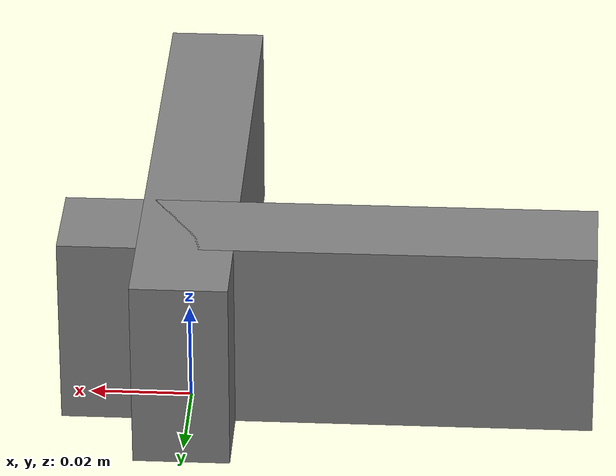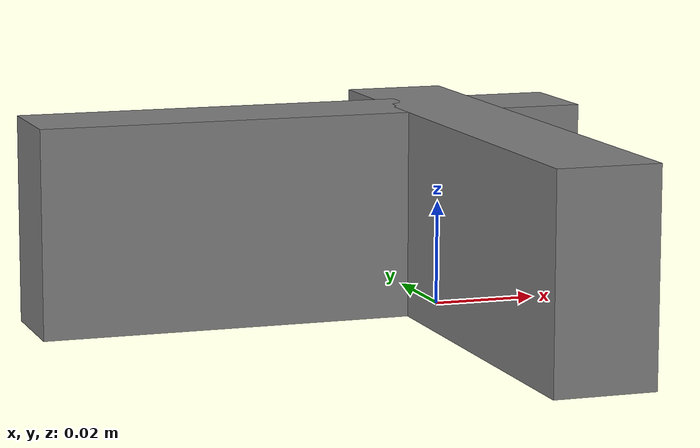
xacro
<?xml version="1.0"?>
<robot name="realsense" xmlns:xacro="http://ros.org/wiki/xacro">

<xacro:include filename="$(find sensors_description)/urdfs/sensors/realsense.urdf.xacro"/>

<link name="parent" />

<xacro:sensor_r430 parent="parent" prefix="front">
 <origin xyz="0 0 0" rpy="0 0 0"/>
</xacro:sensor_r430>

<xacro:sensor_r430 parent="parent" prefix="back">
 <origin xyz="0 0 0" rpy="0 0 -1.5708"/>
</xacro:sensor_r430>

</robot>

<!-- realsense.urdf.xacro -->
<robot xmlns:xacro="http://ros.org/wiki/xacro">

<xacro:include filename="$(find sensors_description)/urdfs/sensors/realsense.gazebo.urdf.xacro"/>

<xacro:property name="M_PI" value="3.1415926535897931" />

<!-- The following values are approximate, and the camera node publishing TF values with actual calibrated camera extrinsic values -->
<xacro:property name="r430_cam_depth_to_left_ir_offset" value="-0.025"/>
<xacro:property name="r430_cam_depth_to_right_ir_offset" value="0.025"/>
<xacro:property name="r430_cam_depth_to_fisheye_offset" value="0.042"/>

<!-- The following values model the aluminum peripherial case for the R430 camera, with the camera joint represented by the actual peripherial camera tripod mount -->
<xacro:property name="r430_cam_width" value="0.105"/>
<xacro:property name="r430_cam_height" value="0.039"/>
<xacro:property name="r430_cam_depth" value="0.019"/>
<xacro:property name="r430_cam_mount_from_center_offset" value=".0275"/>

<!-- The following offset is relative the the physical R430 camera peripherial camera tripod mount -->
<xacro:property name="r430_cam_depth_px" value="0.00"/>
<xacro:property name="r430_cam_depth_py" value="-0.035"/>
<xacro:property name="r430_cam_depth_pz" value="0.028"/>

<material name="aluminum">
	<color rgba="0.5 0.5 0.5 1"/>
</material>

<xacro:macro name="sensor_r430" params="parent *origin prefix">

	<!-- camera body, with origin at bottom screw mount -->
	<joint name="${prefix}/${parent}_camera_joint" type="fixed">
		<xacro:insert_block name="origin" />
		<parent link="${parent}"/>
		<child link="${prefix}/camera_link" />
	</joint>

	<link name="${prefix}/camera_link">
		<visual>
			<origin xyz="0 ${-r430_cam_mount_from_center_offset} ${r430_cam_height/2}" rpy="${M_PI/2} 0 ${M_PI/2}"/>
			<geometry>
				<box size="${r430_cam_width} ${r430_cam_height} ${r430_cam_depth}"/>
			</geometry>
			<material name="aluminum"/>
		</visual>
		<collision>
			<origin xyz="0.0 0.0 ${r430_cam_height/2}" rpy="0 0 0"/>
			<geometry>
				<box size="${r430_cam_depth} ${r430_cam_width} ${r430_cam_height}"/>
			</geometry>
		</collision>
		<inertial>
			<!-- The following are not reliable values, and should not be used for modeling -->
			<mass value="0.564" />
			<origin xyz="0 0 0" />
			<inertia ixx="0.003881243" ixy="0.0" ixz="0.0" iyy="0.000498940" iyz="0.0" izz="0.003879257" />
		</inertial>
	</link>

	<!-- camera depth joints and links -->
	<joint name="${prefix}/camera_depth_joint" type="fixed">
		<origin xyz="${r430_cam_depth_px} ${r430_cam_depth_py} ${r430_cam_depth_pz}" rpy="0 0 0"/>
		<parent link="${prefix}/camera_link"/>
		<child link="${prefix}/camera_depth_frame" />
	</joint>
	<link name="${prefix}/camera_depth_frame"/>

	<joint name="${prefix}/camera_depth_optical_joint" type="fixed">
		<origin xyz="0 0 0" rpy="${-M_PI/2} 0 ${-M_PI/2}" />
		<parent link="${prefix}/camera_depth_frame" />
		<child link="${prefix}/camera_depth_optical_frame" />
	</joint>
	<link name="${prefix}/camera_depth_optical_frame"/>

	<!-- camera left IR joints and links -->
	<joint name="${prefix}/camera_left_ir_joint" type="fixed">
		<origin xyz="0 ${r430_cam_depth_to_left_ir_offset} 0" rpy="0 0 0" />
		<parent link="${prefix}/camera_depth_frame" />
		<child link="${prefix}/camera_left_ir_frame" />
	</joint>
	<link name="${prefix}/camera_left_ir_frame"/>

	<joint name="${prefix}/camera_left_ir_optical_joint" type="fixed">
		<origin xyz="0 0 0" rpy="${-M_PI/2} 0 ${-M_PI/2}" />
		<parent link="${prefix}/camera_left_ir_frame" />
		<child link="${prefix}/camera_left_ir_optical_frame" />
	</joint>
	<link name="${prefix}/camera_left_ir_optical_frame"/>

	<!-- camera right IR joints and links -->
	<joint name="${prefix}/camera_right_ir_joint" type="fixed">
		<origin xyz="0 ${r430_cam_depth_to_right_ir_offset} 0" rpy="0 0 0" />
		<parent link="${prefix}/camera_depth_frame" />
		<child link="${prefix}/camera_right_ir_frame" />
	</joint>
	<link name="${prefix}/camera_right_ir_frame"/>

	<joint name="${prefix}/camera_right_ir_optical_joint" type="fixed">
		<origin xyz="0 0 0" rpy="${-M_PI/2} 0 ${-M_PI/2}" />
		<parent link="${prefix}/camera_right_ir_frame" />
		<child link="${prefix}/camera_right_ir_optical_frame" />
	</joint>
	<link name="${prefix}/camera_right_ir_optical_frame"/>

	<!-- camera fisheye joints and links -->
	<joint name="${prefix}/camera_fisheye_joint" type="fixed">
		<origin xyz="0 ${r430_cam_depth_to_fisheye_offset} 0" rpy="0 0 0" />
		<parent link="${prefix}/camera_depth_frame" />
		<child link="${prefix}/camera_fisheye_frame" />
	</joint>
	<link name="${prefix}/camera_fisheye_frame"/>

	<joint name="${prefix}/camera_fisheye_optical_joint" type="fixed">
		<origin xyz="0 0 0" rpy="${-M_PI/2} 0 ${-M_PI/2}" />
		<parent link="${prefix}/camera_fisheye_frame" />
		<child link="${prefix}/camera_fisheye_optical_frame" />
	</joint>
	<link name="${prefix}/camera_fisheye_optical_frame"/>

	<!-- Gazebo multisense plugin -->
	<xacro:realsense_sensor prefix="${prefix}"/>
</xacro:macro>
</robot>
